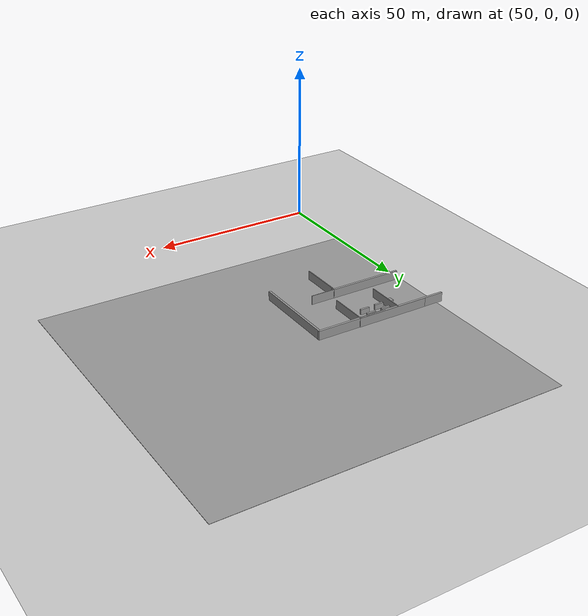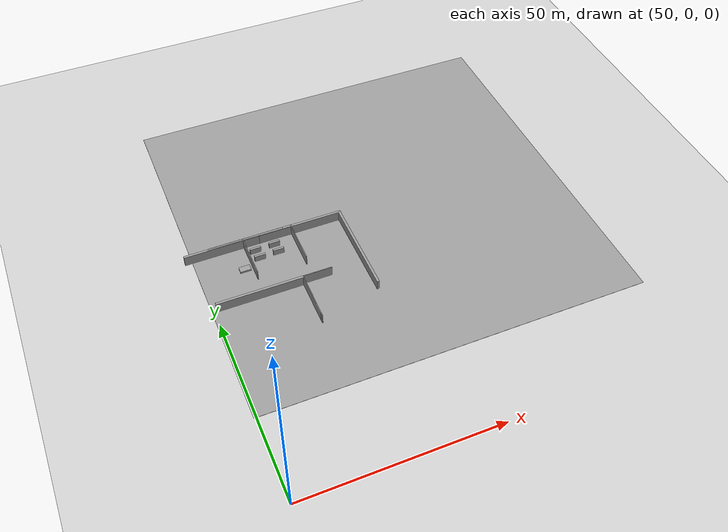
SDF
<sdf version="1.7">
 <world name="default">
  <model name="ground_plane">
   <static>1</static>
   <link name="link">
    <collision name="collision_collision">
     <geometry><plane><normal>0 0 1</normal><size>100 100</size></plane></geometry>
     <surface><friction><ode><mu>100</mu><mu2>50</mu2></ode></friction></surface>
    </collision>
    <visual name="visual">
     <cast_shadows>0</cast_shadows>
     <geometry><plane><normal>0 0 1</normal><size>100 100</size></plane></geometry>
     <material>
      <script><uri>file://media/materials/scripts/gazebo.material</uri><name>Gazebo/Grey</name></script>
     </material>
    </visual>
   </link>
  </model>
  <model name="ground_plane_2">
   <static>1</static>
   <link name="link">
    <collision name="collision_collision">
     <geometry><plane><normal>0 0 1</normal><size>100 100</size></plane></geometry>
     <surface><friction><ode><mu>100</mu><mu2>50</mu2></ode></friction></surface>
    </collision>
    <visual name="visual">
     <cast_shadows>0</cast_shadows>
     <geometry><plane><normal>0 0 1</normal><size>100 100</size></plane></geometry>
     <material>
      <script><uri>file://media/materials/scripts/gazebo.material</uri><name>Gazebo/Grey</name></script>
     </material>
    </visual>
   </link>
   <pose>99.3631 72.3911 0 0 -0 0</pose>
  </model>
  <model name="grey_wall_long_2_clone_0">
   <link name="link">
    <pose>0 0 1.37589 0 -0 0</pose>
    <inertial>
     <inertia><ixx>0</ixx><ixy>0</ixy><ixz>0</ixz><iyy>0</iyy><iyz>0</iyz><izz>0</izz></inertia>
     <mass>0</mass>
    </inertial>
    <visual name="visual">
     <cast_shadows>0</cast_shadows>
     <geometry><box><size>25.8815 0.642976 2.8</size></box></geometry>
     <material>
      <script>
       <uri>model://grey_wall/materials/scripts</uri>
       <uri>model://grey_wall/materials/textures</uri>
       <name>vrc/grey_wall</name>
      </script>
      <shader type="pixel"><normal_map>__default__</normal_map></shader>
      <ambient>1 1 1 1</ambient>
      <diffuse>1 1 1 1</diffuse>
      <specular>0 0 0 1</specular>
      <emissive>0 0 0 1</emissive>
     </material>
    </visual>
    <collision name="collision_collision">
     <geometry><box><size>25.8815 0.642976 2.8</size></box></geometry>
     <surface>
      <friction>
       <ode><mu>1</mu><mu2>1</mu2><fdir1>0 0 0</fdir1><slip1>0</slip1><slip2>0</slip2></ode>
       <torsional>
        <coefficient>1</coefficient>
        <patch_radius>0</patch_radius>
        <surface_radius>0</surface_radius>
        <use_patch_radius>1</use_patch_radius>
        <ode><slip>0</slip></ode>
       </torsional>
      </friction>
      <bounce><restitution_coefficient>0</restitution_coefficient><threshold>1e+06</threshold></bounce>
      <contact>
       <collide_without_contact>0</collide_without_contact>
       <collide_without_contact_bitmask>1</collide_without_contact_bitmask>
       <collide_bitmask>1</collide_bitmask>
       <ode>
        <soft_cfm>0</soft_cfm>
        <soft_erp>0.2</soft_erp>
        <kp>1e+13</kp>
        <kd>1</kd>
        <max_vel>0.01</max_vel>
        <min_depth>0</min_depth>
       </ode>
       <bullet>
        <split_impulse>1</split_impulse>
        <split_impulse_penetration_threshold>-0.01</split_impulse_penetration_threshold>
        <soft_cfm>0</soft_cfm>
        <soft_erp>0.2</soft_erp>
        <kp>1e+13</kp>
        <kd>1</kd>
       </bullet>
      </contact>
     </surface>
    </collision>
   </link>
   <static>1</static>
   <pose>60.5181 71.8016 0 0 -0 0</pose>
  </model>
  <model name="grey_wall_long_term_clone_0">
   <link name="link">
    <pose>-1.74587 -0.378849 1.37589 0 -0 0</pose>
    <inertial>
     <inertia><ixx>0</ixx><ixy>0</ixy><ixz>0</ixz><iyy>0</iyy><iyz>0</iyz><izz>0</izz></inertia>
     <mass>0</mass>
    </inertial>
    <visual name="visual">
     <cast_shadows>0</cast_shadows>
     <geometry><box><size>22.1596 0.642976 2.8</size></box></geometry>
     <material>
      <script>
       <uri>model://grey_wall/materials/scripts</uri>
       <uri>model://grey_wall/materials/textures</uri>
       <name>vrc/grey_wall</name>
      </script>
      <shader type="pixel"><normal_map>__default__</normal_map></shader>
      <ambient>1 1 1 1</ambient>
      <diffuse>1 1 1 1</diffuse>
      <specular>0 0 0 1</specular>
      <emissive>0 0 0 1</emissive>
     </material>
    </visual>
    <collision name="collision_collision">
     <geometry><box><size>22.1596 0.642976 2.8</size></box></geometry>
     <surface>
      <friction>
       <ode><mu>1</mu><mu2>1</mu2><fdir1>0 0 0</fdir1><slip1>0</slip1><slip2>0</slip2></ode>
       <torsional>
        <coefficient>1</coefficient>
        <patch_radius>0</patch_radius>
        <surface_radius>0</surface_radius>
        <use_patch_radius>1</use_patch_radius>
        <ode><slip>0</slip></ode>
       </torsional>
      </friction>
      <bounce><restitution_coefficient>0</restitution_coefficient><threshold>1e+06</threshold></bounce>
      <contact>
       <collide_without_contact>0</collide_without_contact>
       <collide_without_contact_bitmask>1</collide_without_contact_bitmask>
       <collide_bitmask>1</collide_bitmask>
       <ode>
        <soft_cfm>0</soft_cfm>
        <soft_erp>0.2</soft_erp>
        <kp>1e+13</kp>
        <kd>1</kd>
        <max_vel>0.01</max_vel>
        <min_depth>0</min_depth>
       </ode>
       <bullet>
        <split_impulse>1</split_impulse>
        <split_impulse_penetration_threshold>-0.01</split_impulse_penetration_threshold>
        <soft_cfm>0</soft_cfm>
        <soft_erp>0.2</soft_erp>
        <kp>1e+13</kp>
        <kd>1</kd>
       </bullet>
      </contact>
     </surface>
    </collision>
   </link>
   <static>1</static>
   <pose>63.4001 54.7813 0 0 -0 0</pose>
  </model>
  <model name="grew_wall_long_vertial_1_clone_clone_1_clone_1">
   <model name="grey_wall_long">
    <link name="link">
     <pose>0 0 1.37589 0 -0 0</pose>
     <inertial>
      <inertia><ixx>0</ixx><ixy>0</ixy><ixz>0</ixz><iyy>0</iyy><iyz>0</iyz><izz>0</izz></inertia>
      <mass>0</mass>
     </inertial>
     <visual name="visual">
      <cast_shadows>0</cast_shadows>
      <geometry><box><size>25.8815 0.642976 2.8</size></box></geometry>
      <material>
       <script>
        <uri>model://grey_wall/materials/scripts</uri>
        <uri>model://grey_wall/materials/textures</uri>
        <name>vrc/grey_wall</name>
       </script>
       <shader type="pixel"><normal_map>__default__</normal_map></shader>
       <ambient>1 1 1 1</ambient>
       <diffuse>1 1 1 1</diffuse>
       <specular>0 0 0 1</specular>
       <emissive>0 0 0 1</emissive>
      </material>
     </visual>
     <collision name="collision_collision">
      <geometry><box><size>25.8815 0.642976 2.8</size></box></geometry>
      <surface>
       <friction>
        <ode><mu>1</mu><mu2>1</mu2><fdir1>0 0 0</fdir1><slip1>0</slip1><slip2>0</slip2></ode>
        <torsional>
         <coefficient>1</coefficient>
         <patch_radius>0</patch_radius>
         <surface_radius>0</surface_radius>
         <use_patch_radius>1</use_patch_radius>
         <ode><slip>0</slip></ode>
        </torsional>
       </friction>
       <bounce><restitution_coefficient>0</restitution_coefficient><threshold>1e+06</threshold></bounce>
       <contact>
        <collide_without_contact>0</collide_without_contact>
        <collide_without_contact_bitmask>1</collide_without_contact_bitmask>
        <collide_bitmask>1</collide_bitmask>
        <ode>
         <soft_cfm>0</soft_cfm>
         <soft_erp>0.2</soft_erp>
         <kp>1e+13</kp>
         <kd>1</kd>
         <max_vel>0.01</max_vel>
         <min_depth>0</min_depth>
        </ode>
        <bullet>
         <split_impulse>1</split_impulse>
         <split_impulse_penetration_threshold>-0.01</split_impulse_penetration_threshold>
         <soft_cfm>0</soft_cfm>
         <soft_erp>0.2</soft_erp>
         <kp>1e+13</kp>
         <kd>1</kd>
        </bullet>
       </contact>
      </surface>
     </collision>
    </link>
    <static>1</static>
    <pose>1e-06 -0 0 0 -0 1.57003</pose>
   </model>
   <static>0</static>
   <pose>88.8126 58.7743 0 0 -0 0</pose>
  </model>
  <model name="grey_wall_long_term_clone_0_clone">
   <link name="link">
    <pose>-1.74587 -0.378849 1.37589 0 -0 0</pose>
    <inertial>
     <inertia><ixx>0</ixx><ixy>0</ixy><ixz>0</ixz><iyy>0</iyy><iyz>0</iyz><izz>0</izz></inertia>
     <mass>0</mass>
    </inertial>
    <visual name="visual">
     <cast_shadows>0</cast_shadows>
     <geometry><box><size>22.1596 0.642976 2.8</size></box></geometry>
     <material>
      <script>
       <uri>model://grey_wall/materials/scripts</uri>
       <uri>model://grey_wall/materials/textures</uri>
       <name>vrc/grey_wall</name>
      </script>
      <shader type="pixel"><normal_map>__default__</normal_map></shader>
      <ambient>1 1 1 1</ambient>
      <diffuse>1 1 1 1</diffuse>
      <specular>0 0 0 1</specular>
      <emissive>0 0 0 1</emissive>
     </material>
    </visual>
    <collision name="collision_collision">
     <geometry><box><size>22.1596 0.642976 2.8</size></box></geometry>
     <surface>
      <friction>
       <ode><mu>1</mu><mu2>1</mu2><fdir1>0 0 0</fdir1><slip1>0</slip1><slip2>0</slip2></ode>
       <torsional>
        <coefficient>1</coefficient>
        <patch_radius>0</patch_radius>
        <surface_radius>0</surface_radius>
        <use_patch_radius>1</use_patch_radius>
        <ode><slip>0</slip></ode>
       </torsional>
      </friction>
      <bounce><restitution_coefficient>0</restitution_coefficient><threshold>1e+06</threshold></bounce>
      <contact>
       <collide_without_contact>0</collide_without_contact>
       <collide_without_contact_bitmask>1</collide_without_contact_bitmask>
       <collide_bitmask>1</collide_bitmask>
       <ode>
        <soft_cfm>0</soft_cfm>
        <soft_erp>0.2</soft_erp>
        <kp>1e+13</kp>
        <kd>1</kd>
        <max_vel>0.01</max_vel>
        <min_depth>0</min_depth>
       </ode>
       <bullet>
        <split_impulse>1</split_impulse>
        <split_impulse_penetration_threshold>-0.01</split_impulse_penetration_threshold>
        <soft_cfm>0</soft_cfm>
        <soft_erp>0.2</soft_erp>
        <kp>1e+13</kp>
        <kd>1</kd>
       </bullet>
      </contact>
     </surface>
    </collision>
   </link>
   <static>1</static>
   <pose>79.8463 72.1693 0 0 -0 0</pose>
  </model>
  <model name="grey_wall_0_clone_clone_clone_2_clone">
   <static>1</static>
   <link name="link">
    <pose>0 0 1.4 0 -0 0</pose>
    <collision name="collision_collision"><geometry><box><size>7.5 0.2 2.8</size></box></geometry></collision>
    <visual name="visual">
     <cast_shadows>0</cast_shadows>
     <geometry><box><size>7.5 0.2 2.8</size></box></geometry>
     <material>
      <script>
       <uri>model://grey_wall/materials/scripts</uri>
       <uri>model://grey_wall/materials/textures</uri>
       <name>vrc/grey_wall</name>
      </script>
     </material>
    </visual>
   </link>
   <pose>76.4137 54.576 0 0 -0 0</pose>
  </model>
  <model name="grey_wall_12m_vertial_2_clone_clone_1_clone">
   <link name="link">
    <pose>0.289112 -0.003891 1.4 0 0 -1.5701</pose>
    <inertial>
     <inertia><ixx>0</ixx><ixy>0</ixy><ixz>0</ixz><iyy>0</iyy><iyz>0</iyz><izz>0</izz></inertia>
     <mass>0</mass>
    </inertial>
    <visual name="visual">
     <cast_shadows>0</cast_shadows>
     <geometry><box><size>12.0527 0.2 2.8</size></box></geometry>
     <material>
      <script>
       <uri>model://grey_wall/materials/scripts</uri>
       <uri>model://grey_wall/materials/textures</uri>
       <name>vrc/grey_wall</name>
      </script>
      <shader type="pixel"/>
      <ambient>1 1 1 1</ambient>
      <diffuse>1 1 1 1</diffuse>
      <specular>0 0 0 1</specular>
      <emissive>0 0 0 1</emissive>
     </material>
    </visual>
    <collision name="collision_collision">
     <geometry><box><size>12.0527 0.2 2.8</size></box></geometry>
     <surface>
      <friction>
       <ode><mu>1</mu><mu2>1</mu2><fdir1>0 0 0</fdir1><slip1>0</slip1><slip2>0</slip2></ode>
       <torsional>
        <coefficient>1</coefficient>
        <patch_radius>0</patch_radius>
        <surface_radius>0</surface_radius>
        <use_patch_radius>1</use_patch_radius>
        <ode><slip>0</slip></ode>
       </torsional>
      </friction>
      <bounce><restitution_coefficient>0</restitution_coefficient><threshold>1e+06</threshold></bounce>
      <contact>
       <collide_without_contact>0</collide_without_contact>
       <collide_without_contact_bitmask>1</collide_without_contact_bitmask>
       <collide_bitmask>1</collide_bitmask>
       <ode>
        <soft_cfm>0</soft_cfm>
        <soft_erp>0.2</soft_erp>
        <kp>1e+13</kp>
        <kd>1</kd>
        <max_vel>0.01</max_vel>
        <min_depth>0</min_depth>
       </ode>
       <bullet>
        <split_impulse>1</split_impulse>
        <split_impulse_penetration_threshold>-0.01</split_impulse_penetration_threshold>
        <soft_cfm>0</soft_cfm>
        <soft_erp>0.2</soft_erp>
        <kp>1e+13</kp>
        <kd>1</kd>
       </bullet>
      </contact>
     </surface>
    </collision>
   </link>
   <static>1</static>
   <pose>72.2836 48.1327 0 0 -0 0</pose>
  </model>
  <model name="grey_wall_12m_vertial_2_clone_clone_1_clone_0">
   <link name="link">
    <pose>0.289112 -0.003891 1.4 0 0 -1.5701</pose>
    <inertial>
     <inertia><ixx>0</ixx><ixy>0</ixy><ixz>0</ixz><iyy>0</iyy><iyz>0</iyz><izz>0</izz></inertia>
     <mass>0</mass>
    </inertial>
    <visual name="visual">
     <cast_shadows>0</cast_shadows>
     <geometry><box><size>12.0527 0.2 2.8</size></box></geometry>
     <material>
      <script>
       <uri>model://grey_wall/materials/scripts</uri>
       <uri>model://grey_wall/materials/textures</uri>
       <name>vrc/grey_wall</name>
      </script>
      <shader type="pixel"/>
      <ambient>1 1 1 1</ambient>
      <diffuse>1 1 1 1</diffuse>
      <specular>0 0 0 1</specular>
      <emissive>0 0 0 1</emissive>
     </material>
    </visual>
    <collision name="collision_collision">
     <geometry><box><size>12.0527 0.2 2.8</size></box></geometry>
     <surface>
      <friction>
       <ode><mu>1</mu><mu2>1</mu2><fdir1>0 0 0</fdir1><slip1>0</slip1><slip2>0</slip2></ode>
       <torsional>
        <coefficient>1</coefficient>
        <patch_radius>0</patch_radius>
        <surface_radius>0</surface_radius>
        <use_patch_radius>1</use_patch_radius>
        <ode><slip>0</slip></ode>
       </torsional>
      </friction>
      <bounce><restitution_coefficient>0</restitution_coefficient><threshold>1e+06</threshold></bounce>
      <contact>
       <collide_without_contact>0</collide_without_contact>
       <collide_without_contact_bitmask>1</collide_without_contact_bitmask>
       <collide_bitmask>1</collide_bitmask>
       <ode>
        <soft_cfm>0</soft_cfm>
        <soft_erp>0.2</soft_erp>
        <kp>1e+13</kp>
        <kd>1</kd>
        <max_vel>0.01</max_vel>
        <min_depth>0</min_depth>
       </ode>
       <bullet>
        <split_impulse>1</split_impulse>
        <split_impulse_penetration_threshold>-0.01</split_impulse_penetration_threshold>
        <soft_cfm>0</soft_cfm>
        <soft_erp>0.2</soft_erp>
        <kp>1e+13</kp>
        <kd>1</kd>
       </bullet>
      </contact>
     </surface>
    </collision>
   </link>
   <static>1</static>
   <pose>72.3038 47.2607 0 0 -0 0</pose>
  </model>
  <model name="unit_box_clone_clone_24">
   <pose>65.4112 66.2705 0.834396 -0 3.2e-05 -0.010261</pose>
   <link name="link">
    <inertial>
     <mass>1</mass>
     <inertia>
      <ixx>0.166667</ixx>
      <ixy>0</ixy>
      <ixz>0</ixz>
      <iyy>0.166667</iyy>
      <iyz>0</iyz>
      <izz>0.166667</izz>
     </inertia>
    </inertial>
    <collision name="collision_collision">
     <geometry><box><size>2.81196 0.562598 1.66888</size></box></geometry>
    </collision>
    <visual name="visual">
     <geometry><box><size>2.81196 0.562598 1.66888</size></box></geometry>
     <material>
      <script><name>Gazebo/Grey</name><uri>file://media/materials/scripts/gazebo.material</uri></script>
     </material>
    </visual>
   </link>
  </model>
  <model name="unit_box_clone_clone_25">
   <pose>65.0829 68.9785 0.834396 0 3.2e-05 0.013697</pose>
   <link name="link">
    <inertial>
     <mass>1</mass>
     <inertia>
      <ixx>0.166667</ixx>
      <ixy>0</ixy>
      <ixz>0</ixz>
      <iyy>0.166667</iyy>
      <iyz>0</iyz>
      <izz>0.166667</izz>
     </inertia>
    </inertial>
    <collision name="collision_collision">
     <geometry><box><size>2.81196 0.562598 1.66888</size></box></geometry>
    </collision>
    <visual name="visual">
     <geometry><box><size>2.81196 0.562598 1.66888</size></box></geometry>
     <material>
      <script><name>Gazebo/Grey</name><uri>file://media/materials/scripts/gazebo.material</uri></script>
     </material>
    </visual>
   </link>
  </model>
  <model name="unit_box_clone_clone_27">
   <pose>70.3599 66.4715 0.834396 0 -3.2e-05 -0.012624</pose>
   <link name="link">
    <inertial>
     <mass>1</mass>
     <inertia>
      <ixx>0.166667</ixx>
      <ixy>0</ixy>
      <ixz>0</ixz>
      <iyy>0.166667</iyy>
      <iyz>0</iyz>
      <izz>0.166667</izz>
     </inertia>
    </inertial>
    <collision name="collision_collision">
     <geometry><box><size>2.81196 0.562598 1.66888</size></box></geometry>
    </collision>
    <visual name="visual">
     <geometry><box><size>2.81196 0.562598 1.66888</size></box></geometry>
     <material>
      <script><name>Gazebo/Grey</name><uri>file://media/materials/scripts/gazebo.material</uri></script>
     </material>
    </visual>
   </link>
  </model>
  <model name="unit_box_clone_clone_28">
   <pose>70.1179 69.1762 0.834396 0 -3.2e-05 -0.010261</pose>
   <link name="link">
    <inertial>
     <mass>1</mass>
     <inertia>
      <ixx>0.166667</ixx>
      <ixy>0</ixy>
      <ixz>0</ixz>
      <iyy>0.166667</iyy>
      <iyz>0</iyz>
      <izz>0.166667</izz>
     </inertia>
    </inertial>
    <collision name="collision_collision">
     <geometry><box><size>2.81196 0.562598 1.66888</size></box></geometry>
    </collision>
    <visual name="visual">
     <geometry><box><size>2.81196 0.562598 1.66888</size></box></geometry>
     <material>
      <script><name>Gazebo/Grey</name><uri>file://media/materials/scripts/gazebo.material</uri></script>
     </material>
    </visual>
   </link>
  </model>
  <model name="grey_wall_long_term_clone_0_clone_clone">
   <link name="link">
    <pose>-1.74587 -0.378849 1.37589 0 -0 0</pose>
    <inertial>
     <inertia><ixx>0</ixx><ixy>0</ixy><ixz>0</ixz><iyy>0</iyy><iyz>0</iyz><izz>0</izz></inertia>
     <mass>0</mass>
    </inertial>
    <visual name="visual">
     <cast_shadows>0</cast_shadows>
     <geometry><box><size>22.1596 0.642976 2.8</size></box></geometry>
     <material>
      <script>
       <uri>model://grey_wall/materials/scripts</uri>
       <uri>model://grey_wall/materials/textures</uri>
       <name>vrc/grey_wall</name>
      </script>
      <shader type="pixel"><normal_map>__default__</normal_map></shader>
      <ambient>1 1 1 1</ambient>
      <diffuse>1 1 1 1</diffuse>
      <specular>0 0 0 1</specular>
      <emissive>0 0 0 1</emissive>
     </material>
    </visual>
    <collision name="collision_collision">
     <geometry><box><size>22.1596 0.642976 2.8</size></box></geometry>
     <surface>
      <friction>
       <ode><mu>1</mu><mu2>1</mu2><fdir1>0 0 0</fdir1><slip1>0</slip1><slip2>0</slip2></ode>
       <torsional>
        <coefficient>1</coefficient>
        <patch_radius>0</patch_radius>
        <surface_radius>0</surface_radius>
        <use_patch_radius>1</use_patch_radius>
        <ode><slip>0</slip></ode>
       </torsional>
      </friction>
      <bounce><restitution_coefficient>0</restitution_coefficient><threshold>1e+06</threshold></bounce>
      <contact>
       <collide_without_contact>0</collide_without_contact>
       <collide_without_contact_bitmask>1</collide_without_contact_bitmask>
       <collide_bitmask>1</collide_bitmask>
       <ode>
        <soft_cfm>0</soft_cfm>
        <soft_erp>0.2</soft_erp>
        <kp>1e+13</kp>
        <kd>1</kd>
        <max_vel>0.01</max_vel>
        <min_depth>0</min_depth>
       </ode>
       <bullet>
        <split_impulse>1</split_impulse>
        <split_impulse_penetration_threshold>-0.01</split_impulse_penetration_threshold>
        <soft_cfm>0</soft_cfm>
        <soft_erp>0.2</soft_erp>
        <kp>1e+13</kp>
        <kd>1</kd>
       </bullet>
      </contact>
     </surface>
    </collision>
   </link>
   <static>1</static>
   <pose>66.5136 72.2546 0 0 -0 0</pose>
  </model>
  <model name="grey_wall_12m_vertial_2_clone_clone_2_clone_clone_2">
   <link name="link">
    <pose>0.289112 -0.003891 1.4 0 0 -1.5701</pose>
    <inertial>
     <inertia><ixx>0</ixx><ixy>0</ixy><ixz>0</ixz><iyy>0</iyy><iyz>0</iyz><izz>0</izz></inertia>
     <mass>0</mass>
    </inertial>
    <visual name="visual">
     <cast_shadows>0</cast_shadows>
     <geometry><box><size>12.0527 0.2 2.8</size></box></geometry>
     <material>
      <script>
       <uri>model://grey_wall/materials/scripts</uri>
       <uri>model://grey_wall/materials/textures</uri>
       <name>vrc/grey_wall</name>
      </script>
      <shader type="pixel"/>
      <ambient>1 1 1 1</ambient>
      <diffuse>1 1 1 1</diffuse>
      <specular>0 0 0 1</specular>
      <emissive>0 0 0 1</emissive>
     </material>
    </visual>
    <collision name="collision_collision">
     <geometry><box><size>12.0527 0.2 2.8</size></box></geometry>
     <surface>
      <friction>
       <ode><mu>1</mu><mu2>1</mu2><fdir1>0 0 0</fdir1><slip1>0</slip1><slip2>0</slip2></ode>
       <torsional>
        <coefficient>1</coefficient>
        <patch_radius>0</patch_radius>
        <surface_radius>0</surface_radius>
        <use_patch_radius>1</use_patch_radius>
        <ode><slip>0</slip></ode>
       </torsional>
      </friction>
      <bounce><restitution_coefficient>0</restitution_coefficient><threshold>1e+06</threshold></bounce>
      <contact>
       <collide_without_contact>0</collide_without_contact>
       <collide_without_contact_bitmask>1</collide_without_contact_bitmask>
       <collide_bitmask>1</collide_bitmask>
       <ode>
        <soft_cfm>0</soft_cfm>
        <soft_erp>0.2</soft_erp>
        <kp>1e+13</kp>
        <kd>1</kd>
        <max_vel>0.01</max_vel>
        <min_depth>0</min_depth>
       </ode>
       <bullet>
        <split_impulse>1</split_impulse>
        <split_impulse_penetration_threshold>-0.01</split_impulse_penetration_threshold>
        <soft_cfm>0</soft_cfm>
        <soft_erp>0.2</soft_erp>
        <kp>1e+13</kp>
        <kd>1</kd>
       </bullet>
      </contact>
     </surface>
    </collision>
   </link>
   <static>1</static>
   <pose>62.585 66.1552 0 0 -0 0</pose>
  </model>
  <model name="grey_wall_12m_vertial_2_clone_clone_2_clone_clone_3">
   <link name="link">
    <pose>0.289112 -0.003891 1.4 0 0 -1.5701</pose>
    <inertial>
     <inertia><ixx>0</ixx><ixy>0</ixy><ixz>0</ixz><iyy>0</iyy><iyz>0</iyz><izz>0</izz></inertia>
     <mass>0</mass>
    </inertial>
    <visual name="visual">
     <cast_shadows>0</cast_shadows>
     <geometry><box><size>12.0527 0.2 2.8</size></box></geometry>
     <material>
      <script>
       <uri>model://grey_wall/materials/scripts</uri>
       <uri>model://grey_wall/materials/textures</uri>
       <name>vrc/grey_wall</name>
      </script>
      <shader type="pixel"/>
      <ambient>1 1 1 1</ambient>
      <diffuse>1 1 1 1</diffuse>
      <specular>0 0 0 1</specular>
      <emissive>0 0 0 1</emissive>
     </material>
    </visual>
    <collision name="collision_collision">
     <geometry><box><size>12.0527 0.2 2.8</size></box></geometry>
     <surface>
      <friction>
       <ode><mu>1</mu><mu2>1</mu2><fdir1>0 0 0</fdir1><slip1>0</slip1><slip2>0</slip2></ode>
       <torsional>
        <coefficient>1</coefficient>
        <patch_radius>0</patch_radius>
        <surface_radius>0</surface_radius>
        <use_patch_radius>1</use_patch_radius>
        <ode><slip>0</slip></ode>
       </torsional>
      </friction>
      <bounce><restitution_coefficient>0</restitution_coefficient><threshold>1e+06</threshold></bounce>
      <contact>
       <collide_without_contact>0</collide_without_contact>
       <collide_without_contact_bitmask>1</collide_without_contact_bitmask>
       <collide_bitmask>1</collide_bitmask>
       <ode>
        <soft_cfm>0</soft_cfm>
        <soft_erp>0.2</soft_erp>
        <kp>1e+13</kp>
        <kd>1</kd>
        <max_vel>0.01</max_vel>
        <min_depth>0</min_depth>
       </ode>
       <bullet>
        <split_impulse>1</split_impulse>
        <split_impulse_penetration_threshold>-0.01</split_impulse_penetration_threshold>
        <soft_cfm>0</soft_cfm>
        <soft_erp>0.2</soft_erp>
        <kp>1e+13</kp>
        <kd>1</kd>
       </bullet>
      </contact>
     </surface>
    </collision>
   </link>
   <static>1</static>
   <pose>75.294 66.174 0 0 -0 0</pose>
  </model>
  <model name="unit_box_clone_clone_6_clone_4">
   <pose>60.8362 64.3977 0.281103 -1.5708 -0.00014 -7e-05</pose>
   <link name="link">
    <inertial>
     <mass>1</mass>
     <inertia>
      <ixx>0.166667</ixx>
      <ixy>0</ixy>
      <ixz>0</ixz>
      <iyy>0.166667</iyy>
      <iyz>0</iyz>
      <izz>0.166667</izz>
     </inertia>
    </inertial>
    <collision name="collision_collision">
     <geometry><box><size>2.81196 0.562598 1.66888</size></box></geometry>
    </collision>
    <visual name="visual">
     <geometry><box><size>2.81196 0.562598 1.66888</size></box></geometry>
     <material>
      <script><name>Gazebo/Grey</name><uri>file://media/materials/scripts/gazebo.material</uri></script>
     </material>
    </visual>
   </link>
  </model>
 </world>
</sdf>
